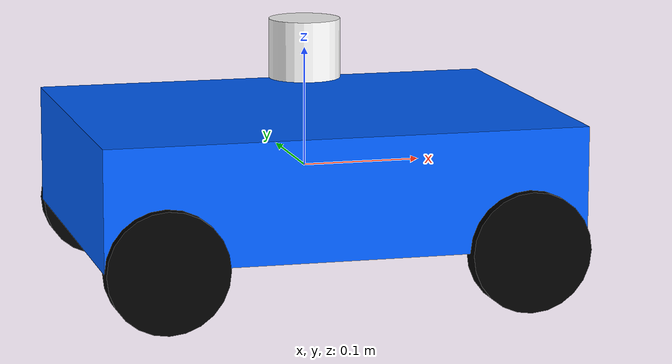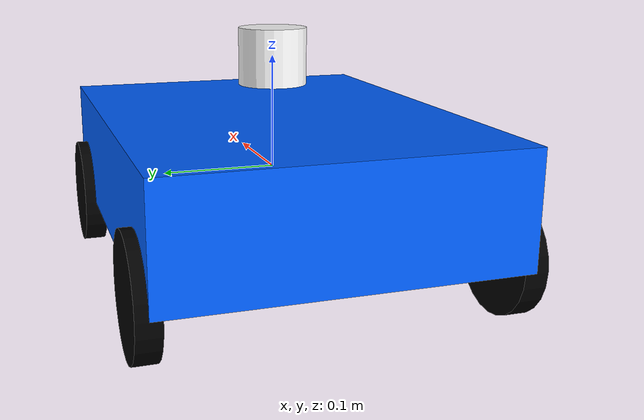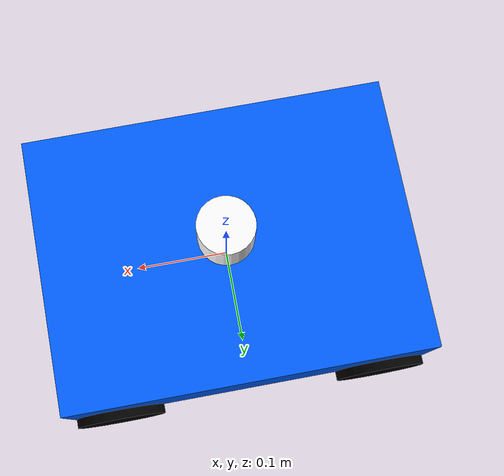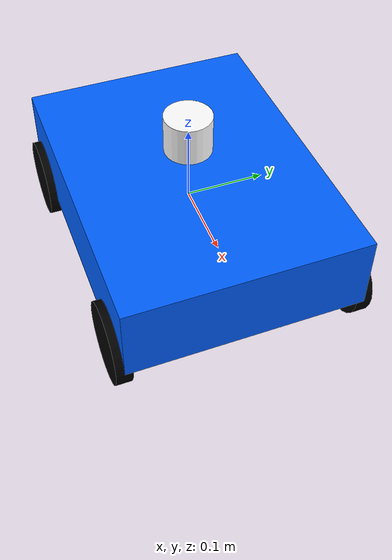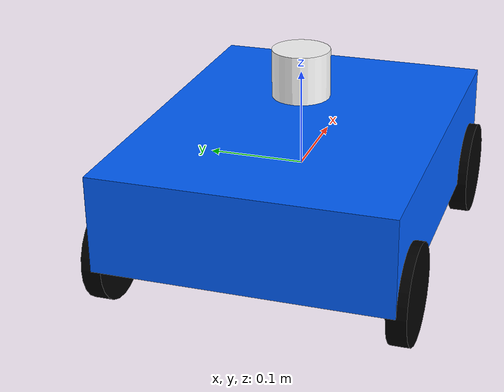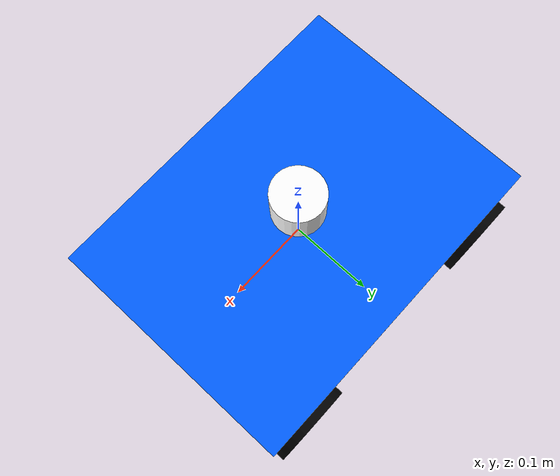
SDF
<sdf version='1.9'>
  <model name='eclipse_bot'>
    <link name='base_link'>
      <inertial>
        <pose>0 0 0.00266990291262136 0 0 0</pose>
        <mass>2.0600000000000001</mass>
        <inertia>
          <ixx>0.020620315533980579</ixx>
          <ixy>0</ixy>
          <ixz>0</ixz>
          <iyy>0.020620315533980579</iyy>
          <iyz>0</iyz>
          <izz>0.020109999999999999</izz>
        </inertia>
      </inertial>
      <collision name='base_link_collision'>
        <pose>0 0 0 0 0 0</pose>
        <geometry>
          <box>
            <size>0.4 0.3 0.1</size>
          </box>
        </geometry>
      </collision>
      <collision name='base_link_fixed_joint_lump__lidar_link_collision_1'>
        <pose>0 0 0.1 0 0 0</pose>
        <geometry>
          <cylinder>
            <length>0.050000000000000003</length>
            <radius>0.029999999999999999</radius>
          </cylinder>
        </geometry>
        <surface>
          <contact>
            <ode/>
          </contact>
          <friction>
            <ode/>
          </friction>
        </surface>
      </collision>
      <visual name='base_link_visual'>
        <pose>0 0 0 0 0 0</pose>
        <geometry>
          <box>
            <size>0.4 0.3 0.1</size>
          </box>
        </geometry>
        <material>
          <diffuse>0 0.375 1 1</diffuse>
          <ambient>0 0.375 1 1</ambient>
        </material>
      </visual>
      <visual name='base_link_fixed_joint_lump__lidar_link_visual_1'>
        <pose>0 0 0.1 0 0 0</pose>
        <geometry>
          <cylinder>
            <length>0.050000000000000003</length>
            <radius>0.029999999999999999</radius>
          </cylinder>
        </geometry>
        <material>
          <diffuse>1 1 1 1</diffuse>
          <ambient>1 1 1 1</ambient>
        </material>
      </visual>
      <sensor name='imu_sensor' type='imu'>
        <always_on>true</always_on>
        <update_rate>100</update_rate>
        <topic>imu</topic>
        <imu>
          <angular_velocity>
            <x>
              <noise type='gaussian'>
                <mean>0</mean>
                <stddev>0.01</stddev>
              </noise>
            </x>
            <y>
              <noise type='gaussian'>
                <mean>0</mean>
                <stddev>0.01</stddev>
              </noise>
            </y>
            <z>
              <noise type='gaussian'>
                <mean>0</mean>
                <stddev>0.01</stddev>
              </noise>
            </z>
          </angular_velocity>
          <linear_acceleration>
            <x>
              <noise type='gaussian'>
                <mean>0</mean>
                <stddev>0.10000000000000001</stddev>
              </noise>
            </x>
            <y>
              <noise type='gaussian'>
                <mean>0</mean>
                <stddev>0.10000000000000001</stddev>
              </noise>
            </y>
            <z>
              <noise type='gaussian'>
                <mean>0</mean>
                <stddev>0.10000000000000001</stddev>
              </noise>
            </z>
          </linear_acceleration>
        </imu>
        <pose>0 0 0.05 0 -0 0</pose>
      </sensor>
      <sensor name='lidar_sensor' type='gpu_lidar'>
        <always_on>true</always_on>
        <update_rate>10</update_rate>
        <visualize>true</visualize>
        <topic>scan</topic>
        <ray>
          <scan>
            <horizontal>
              <samples>720</samples>
              <resolution>1</resolution>
              <min_angle>-1.5708</min_angle>
              <max_angle>1.5708</max_angle>
            </horizontal>
          </scan>
          <range>
            <min>0.12</min>
            <max>5</max>
            <resolution>0.01</resolution>
          </range>
          <noise>
            <type>gaussian</type>
            <stddev>0.01</stddev>
          </noise>
        </ray>
        <plugin name='gz::sim::systems::Sensors' filename='gz-sim-sensors-system'/>
        <pose>0 0 0.1 0 -0 0</pose>
      </sensor>
    </link>
    <joint name='front_left_wheel_joint' type='revolute'>
      <pose relative_to='base_link'>0.15 0.15 -0.05 0 0 0</pose>
      <parent>base_link</parent>
      <child>front_left_wheel</child>
      <axis>
        <xyz>0 1 0</xyz>
        <limit>
          <lower>-10000000000000000</lower>
          <upper>10000000000000000</upper>
        </limit>
        <dynamics>
          <spring_reference>0</spring_reference>
          <spring_stiffness>0</spring_stiffness>
        </dynamics>
      </axis>
    </joint>
    <link name='front_left_wheel'>
      <pose relative_to='front_left_wheel_joint'>0 0 0 0 0 0</pose>
      <inertial>
        <pose>0 0 0 0 0 0</pose>
        <mass>0.20000000000000001</mass>
        <inertia>
          <ixx>0.00025000000000000001</ixx>
          <ixy>0</ixy>
          <ixz>0</ixz>
          <iyy>0.00025000000000000001</iyy>
          <iyz>0</iyz>
          <izz>0.0001</izz>
        </inertia>
      </inertial>
      <collision name='front_left_wheel_collision'>
        <pose>0 0 0 1.5708 0 0</pose>
        <geometry>
          <cylinder>
            <length>0.02</length>
            <radius>0.050000000000000003</radius>
          </cylinder>
        </geometry>
        <surface>
          <contact>
            <ode>
              <kp>1000000</kp>
              <kd>100</kd>
              <max_vel>1</max_vel>
              <min_depth>0.001</min_depth>
            </ode>
          </contact>
          <friction>
            <ode>
              <mu>1</mu>
              <mu2>1</mu2>
            </ode>
          </friction>
        </surface>
      </collision>
      <visual name='front_left_wheel_visual'>
        <pose>0 0 0 1.5708 0 0</pose>
        <geometry>
          <cylinder>
            <length>0.02</length>
            <radius>0.050000000000000003</radius>
          </cylinder>
        </geometry>
        <material>
          <diffuse>0 0 0 1</diffuse>
          <ambient>0 0 0 1</ambient>
        </material>
      </visual>
    </link>
    <joint name='front_right_wheel_joint' type='revolute'>
      <pose relative_to='base_link'>0.15 -0.15 -0.05 0 0 0</pose>
      <parent>base_link</parent>
      <child>front_right_wheel</child>
      <axis>
        <xyz>0 1 0</xyz>
        <limit>
          <lower>-10000000000000000</lower>
          <upper>10000000000000000</upper>
        </limit>
        <dynamics>
          <spring_reference>0</spring_reference>
          <spring_stiffness>0</spring_stiffness>
        </dynamics>
      </axis>
    </joint>
    <link name='front_right_wheel'>
      <pose relative_to='front_right_wheel_joint'>0 0 0 0 0 0</pose>
      <inertial>
        <pose>0 0 0 0 0 0</pose>
        <mass>0.20000000000000001</mass>
        <inertia>
          <ixx>0.00025000000000000001</ixx>
          <ixy>0</ixy>
          <ixz>0</ixz>
          <iyy>0.00025000000000000001</iyy>
          <iyz>0</iyz>
          <izz>0.0001</izz>
        </inertia>
      </inertial>
      <collision name='front_right_wheel_collision'>
        <pose>0 0 0 1.5708 0 0</pose>
        <geometry>
          <cylinder>
            <length>0.02</length>
            <radius>0.050000000000000003</radius>
          </cylinder>
        </geometry>
        <surface>
          <contact>
            <ode>
              <kp>1000000</kp>
              <kd>100</kd>
              <max_vel>1</max_vel>
              <min_depth>0.001</min_depth>
            </ode>
          </contact>
          <friction>
            <ode>
              <mu>1</mu>
              <mu2>1</mu2>
            </ode>
          </friction>
        </surface>
      </collision>
      <visual name='front_right_wheel_visual'>
        <pose>0 0 0 1.5708 0 0</pose>
        <geometry>
          <cylinder>
            <length>0.02</length>
            <radius>0.050000000000000003</radius>
          </cylinder>
        </geometry>
        <material>
          <diffuse>0 0 0 1</diffuse>
          <ambient>0 0 0 1</ambient>
        </material>
      </visual>
    </link>
    <joint name='rear_left_wheel_joint' type='revolute'>
      <pose relative_to='base_link'>-0.15 0.15 -0.05 0 0 0</pose>
      <parent>base_link</parent>
      <child>rear_left_wheel</child>
      <axis>
        <xyz>0 1 0</xyz>
        <limit>
          <lower>-10000000000000000</lower>
          <upper>10000000000000000</upper>
        </limit>
        <dynamics>
          <spring_reference>0</spring_reference>
          <spring_stiffness>0</spring_stiffness>
        </dynamics>
      </axis>
    </joint>
    <link name='rear_left_wheel'>
      <pose relative_to='rear_left_wheel_joint'>0 0 0 0 0 0</pose>
      <inertial>
        <pose>0 0 0 0 0 0</pose>
        <mass>0.20000000000000001</mass>
        <inertia>
          <ixx>0.00025000000000000001</ixx>
          <ixy>0</ixy>
          <ixz>0</ixz>
          <iyy>0.00025000000000000001</iyy>
          <iyz>0</iyz>
          <izz>0.0001</izz>
        </inertia>
      </inertial>
      <collision name='rear_left_wheel_collision'>
        <pose>0 0 0 1.5708 0 0</pose>
        <geometry>
          <cylinder>
            <length>0.02</length>
            <radius>0.050000000000000003</radius>
          </cylinder>
        </geometry>
        <surface>
          <contact>
            <ode>
              <kp>1000000</kp>
              <kd>100</kd>
              <max_vel>1</max_vel>
              <min_depth>0.001</min_depth>
            </ode>
          </contact>
          <friction>
            <ode>
              <mu>0.10000000000000001</mu>
              <mu2>0.10000000000000001</mu2>
            </ode>
          </friction>
        </surface>
      </collision>
      <visual name='rear_left_wheel_visual'>
        <pose>0 0 0 1.5708 0 0</pose>
        <geometry>
          <cylinder>
            <length>0.02</length>
            <radius>0.050000000000000003</radius>
          </cylinder>
        </geometry>
        <material>
          <diffuse>0 0 0 1</diffuse>
          <ambient>0 0 0 1</ambient>
        </material>
      </visual>
    </link>
    <joint name='rear_right_wheel_joint' type='revolute'>
      <pose relative_to='base_link'>-0.15 -0.15 -0.05 0 0 0</pose>
      <parent>base_link</parent>
      <child>rear_right_wheel</child>
      <axis>
        <xyz>0 1 0</xyz>
        <limit>
          <lower>-10000000000000000</lower>
          <upper>10000000000000000</upper>
        </limit>
        <dynamics>
          <spring_reference>0</spring_reference>
          <spring_stiffness>0</spring_stiffness>
        </dynamics>
      </axis>
    </joint>
    <link name='rear_right_wheel'>
      <pose relative_to='rear_right_wheel_joint'>0 0 0 0 0 0</pose>
      <inertial>
        <pose>0 0 0 0 0 0</pose>
        <mass>0.20000000000000001</mass>
        <inertia>
          <ixx>0.00025000000000000001</ixx>
          <ixy>0</ixy>
          <ixz>0</ixz>
          <iyy>0.00025000000000000001</iyy>
          <iyz>0</iyz>
          <izz>0.0001</izz>
        </inertia>
      </inertial>
      <collision name='rear_right_wheel_collision'>
        <pose>0 0 0 1.5708 0 0</pose>
        <geometry>
          <cylinder>
            <length>0.02</length>
            <radius>0.050000000000000003</radius>
          </cylinder>
        </geometry>
        <surface>
          <contact>
            <ode>
              <kp>1000000</kp>
              <kd>100</kd>
              <max_vel>1</max_vel>
              <min_depth>0.001</min_depth>
            </ode>
          </contact>
          <friction>
            <ode>
              <mu>0.10000000000000001</mu>
              <mu2>0.10000000000000001</mu2>
            </ode>
          </friction>
        </surface>
      </collision>
      <visual name='rear_right_wheel_visual'>
        <pose>0 0 0 1.5708 0 0</pose>
        <geometry>
          <cylinder>
            <length>0.02</length>
            <radius>0.050000000000000003</radius>
          </cylinder>
        </geometry>
        <material>
          <diffuse>0 0 0 1</diffuse>
          <ambient>0 0 0 1</ambient>
        </material>
      </visual>
    </link>
    <plugin name='gz::sim::systems::DiffDrive' filename='gz-sim-diff-drive-system'>
      <left_joint>front_left_wheel_joint</left_joint>
      <right_joint>front_right_wheel_joint</right_joint>
      <wheel_separation>0.3</wheel_separation>
      <wheel_radius>0.05</wheel_radius>
      <odom_publish_frequency>50</odom_publish_frequency>
      <max_linear_acceleration>1</max_linear_acceleration>
      <min_linear_acceleration>-1</min_linear_acceleration>
      <max_angular_acceleration>2</max_angular_acceleration>
      <min_angular_acceleration>-2</min_angular_acceleration>
      <topic>cmd_vel</topic>
      <odom_topic>odom</odom_topic>
      <odom_frame>odom</odom_frame>
      <robot_base_frame>base_link</robot_base_frame>
      <publish_odom>true</publish_odom>
      <publish_tf>true</publish_tf>
    </plugin>
    <frame name='imu_joint' attached_to='base_link'>
      <pose>0 0 0.05 0 -0 0</pose>
    </frame>
    <frame name='imu_link' attached_to='imu_joint'/>
    <frame name='lidar_joint' attached_to='base_link'>
      <pose>0 0 0.1 0 -0 0</pose>
    </frame>
    <frame name='lidar_link' attached_to='lidar_joint'/>
  </model>
</sdf>
